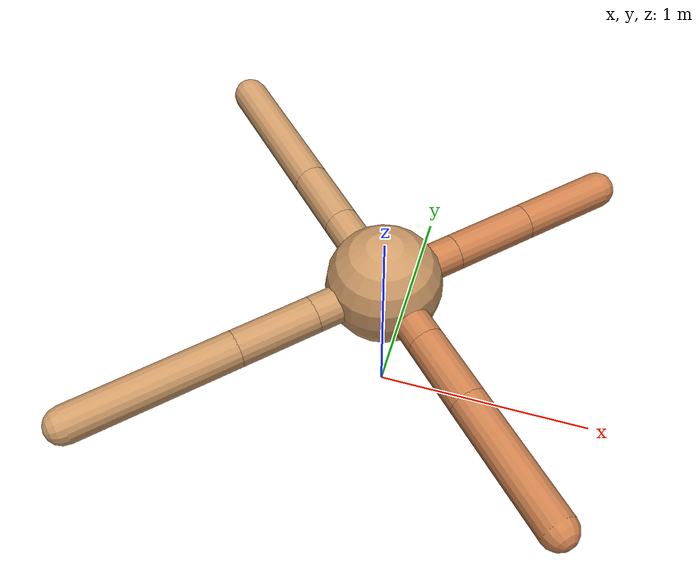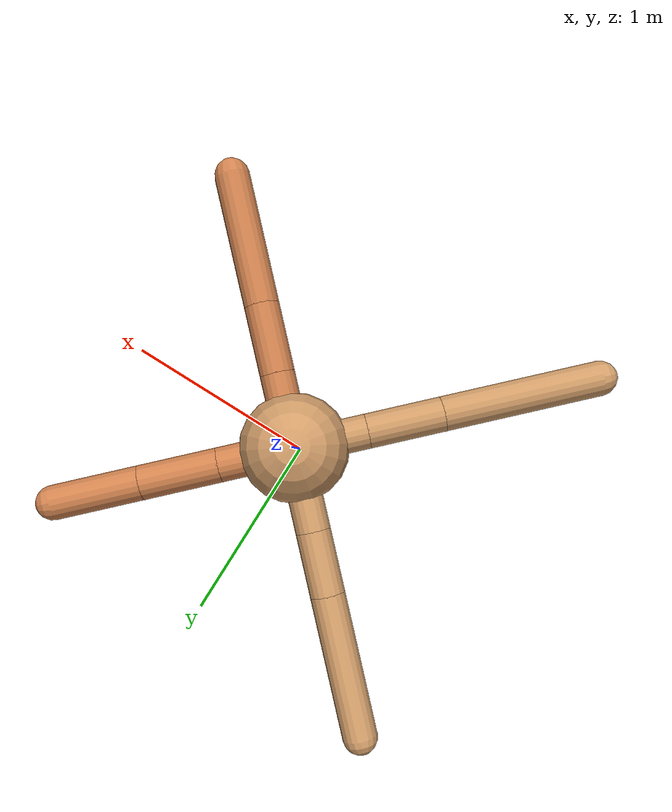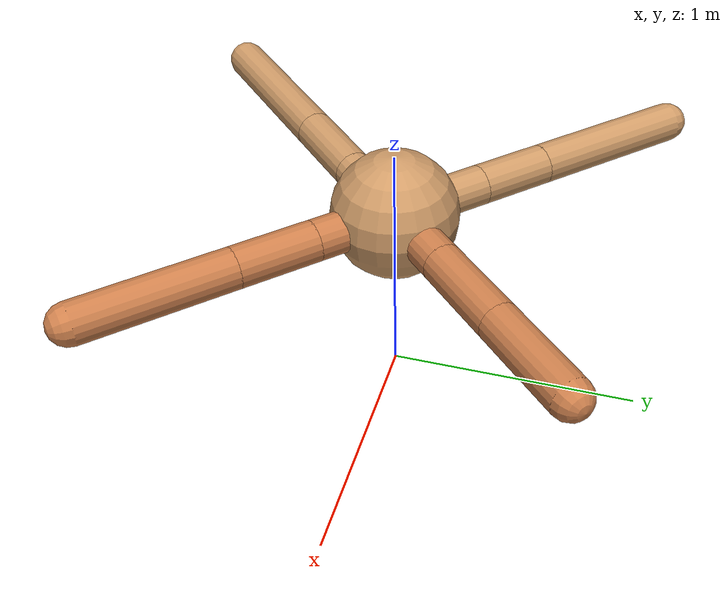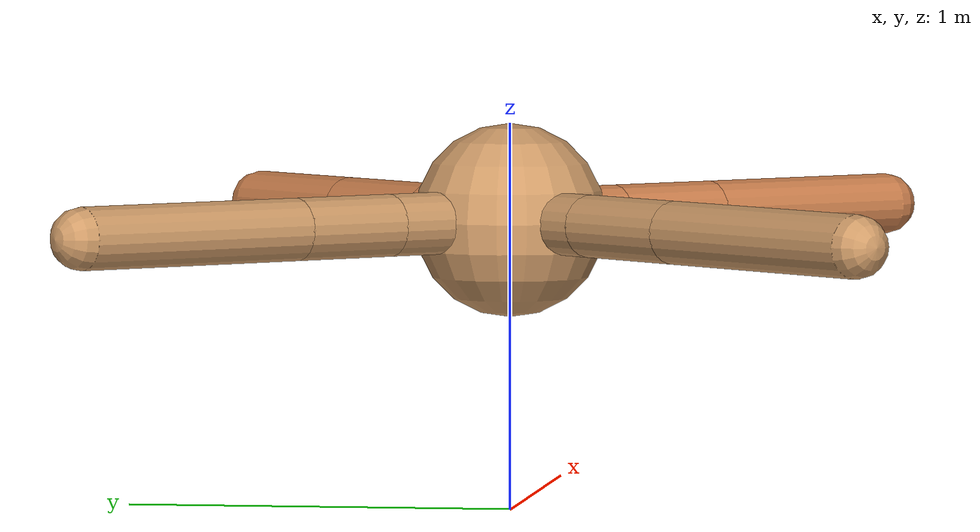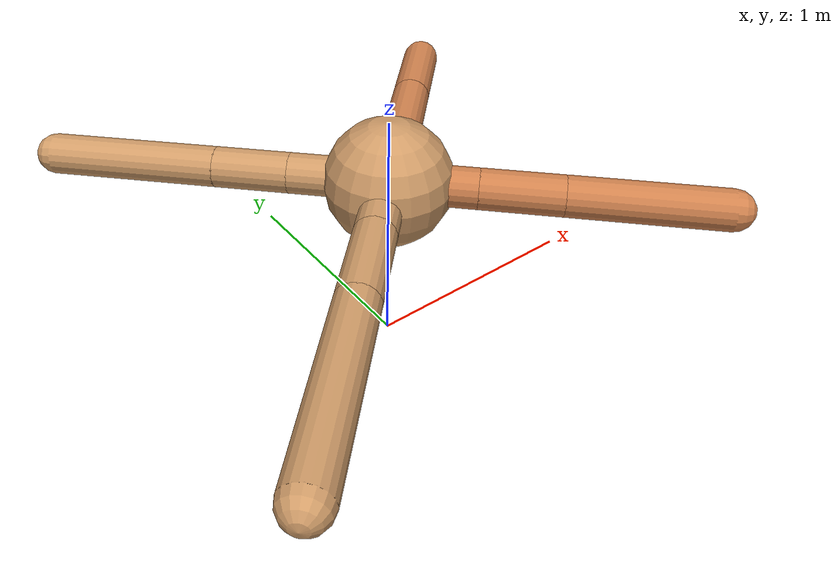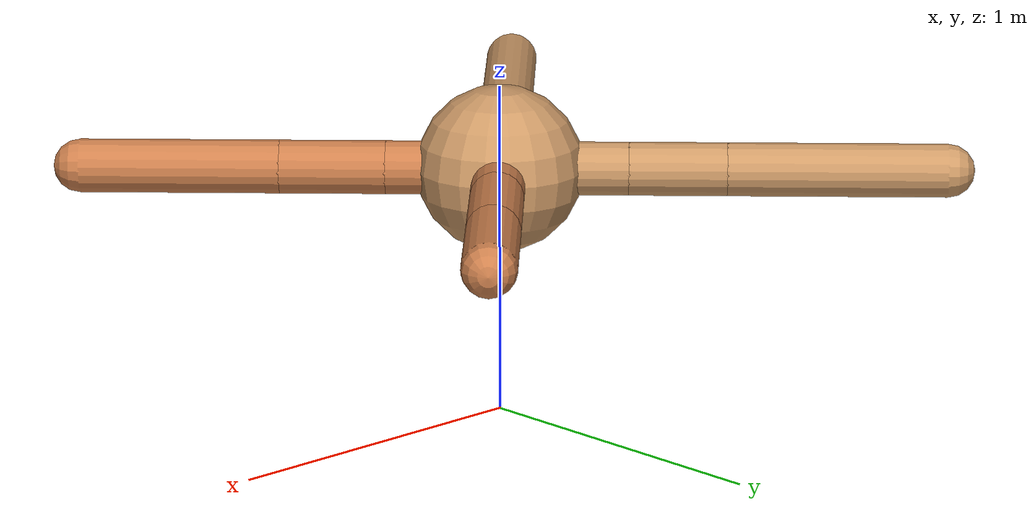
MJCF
<mujoco model="ant">
  <compiler angle="degree" coordinate="local" inertiafromgeom="true" />
  <option integrator="RK4" timestep="0.01" />
  <custom>
    <numeric data="0.0 0.0 0.55 1.0 0.0 0.0 0.0 0.0 1.0 0.0 -1.0 0.0 -1.0 0.0 1.0" name="init_qpos" />
  </custom>
  <default>
    <joint armature="1" damping="1" limited="true" />
    <geom conaffinity="0" condim="3" density="5.0" friction="1.5 0.1 0.1" margin="0.01" rgba="0.8 0.6 0.4 1" />
  </default>
  <worldbody>
    <body name="torso" pos="0 0 0.75">
      <geom name="torso_geom" pos="0 0 0" size="0.25" type="sphere" />

      <body name="front_left_leg" pos="0 0 0">
        <geom fromto="0.0 0.0 0.0 0.24395643084632335 0.24395643084632335 0.0" name="aux_1_geom" size="0.08" type="capsule" rgba=".8 .5 .3 1" />
        <body name="aux_1" pos="0.24395643084632335 0.24395643084632335 0.0">
          <joint axis="0 0 1" name="hip_1" pos="0.0 0.0 0.0" range="-40 40" type="hinge" />
          <geom fromto="0.0 0.0 0.0 0.2546775457697244 0.2546775457697244 0.0" name="left_leg_geom" size="0.08" type="capsule" rgba=".8 .5 .3 1" />
          <body pos="0.2546775457697244 0.2546775457697244 0.0" name="front_left_foot">
            <joint axis="-1 1 0" name="ankle_1" pos="0.0 0.0 0.0" range="30 100" type="hinge" />
            <geom fromto="0.0 0.0 0.0 0.2840832724447343 0.2840832724447343 0.0" name="left_ankle_geom" size="0.08" type="capsule" rgba=".8 .5 .3 1" />
          </body>
        </body>
      </body>
      <body name="front_right_leg" pos="0 0 0">
        <geom fromto="0.0 0.0 0.0 -0.27092562007468385 0.27092562007468385 0.0" name="aux_2_geom" size="0.08" type="capsule" />
        <body name="aux_2" pos="-0.27092562007468385 0.27092562007468385 0.0">
          <joint axis="0 0 1" name="hip_2" pos="0.0 0.0 0.0" range="-40 40" type="hinge" />
          <geom fromto="0.0 0.0 0.0 -0.2069982687466262 0.2069982687466262 0.0" name="right_leg_geom" size="0.08" type="capsule" />
          <body pos="-0.2069982687466262 0.2069982687466262 0.0" name="front_right_foot">
            <joint axis="1 1 0" name="ankle_2" pos="0.0 0.0 0.0" range="-100 -30" type="hinge" />
            <geom fromto="0.0 0.0 0.0 -0.46413941916227064 0.46413941916227064 0.0" name="right_ankle_geom" size="0.08" type="capsule" />
          </body>
        </body>
      </body>
      <body name="left_back_leg" pos="0 0 0">
        <geom fromto="0.0 0.0 0.0 -0.23809223645070443 -0.23809223645070443 0.0" name="aux_3_geom" size="0.08" type="capsule" />
        <body name="aux_3" pos="-0.23809223645070443 -0.23809223645070443 0.0">
          <joint axis="0 0 1" name="hip_3" pos="0.0 0.0 0.0" range="-40 40" type="hinge" />
          <geom fromto="0.0 0.0 0.0 -0.24528841054932357 -0.24528841054932357 0.0" name="back_leg_geom" size="0.08" type="capsule" />
          <body pos="-0.24528841054932357 -0.24528841054932357 0.0" name="left_back_foot">
            <joint axis="-1 1 0" name="ankle_3" pos="0.0 0.0 0.0" range="-100 -30" type="hinge" />
            <geom fromto="0.0 0.0 0.0 -0.5092604193705075 -0.5092604193705075 0.0" name="third_ankle_geom" size="0.08" type="capsule" />
          </body>
        </body>
      </body>
      <body name="right_back_leg" pos="0 0 0">
        <geom fromto="0.0 0.0 0.0 0.24085463542650537 -0.24085463542650537 0.0" name="aux_4_geom" size="0.08" type="capsule" rgba=".8 .5 .3 1" />
        <body name="aux_4" pos="0.24085463542650537 -0.24085463542650537 0.0">
          <joint axis="0 0 1" name="hip_4" pos="0.0 0.0 0.0" range="-40 40" type="hinge" />
          <geom fromto="0.0 0.0 0.0 0.2233479813561303 -0.2233479813561303 0.0" name="rightback_leg_geom" size="0.08" type="capsule" rgba=".8 .5 .3 1" />
          <body pos="0.2233479813561303 -0.2233479813561303 0.0" name="right_back_foot">
            <joint axis="1 1 0" name="ankle_4" pos="0.0 0.0 0.0" range="30 100" type="hinge" />
            <geom fromto="0.0 0.0 0.0 0.42121492907153635 -0.42121492907153635 0.0" name="fourth_ankle_geom" size="0.08" type="capsule" rgba=".8 .5 .3 1" />
          </body>
        </body>
      </body>
    </body>
  </worldbody>
  <actuator>
    <motor ctrllimited="true" ctrlrange="-1.0 1.0" joint="hip_4" gear="150" />
    <motor ctrllimited="true" ctrlrange="-1.0 1.0" joint="ankle_4" gear="150" />
    <motor ctrllimited="true" ctrlrange="-1.0 1.0" joint="hip_1" gear="150" />
    <motor ctrllimited="true" ctrlrange="-1.0 1.0" joint="ankle_1" gear="150" />
    <motor ctrllimited="true" ctrlrange="-1.0 1.0" joint="hip_2" gear="150" />
    <motor ctrllimited="true" ctrlrange="-1.0 1.0" joint="ankle_2" gear="150" />
    <motor ctrllimited="true" ctrlrange="-1.0 1.0" joint="hip_3" gear="150" />
    <motor ctrllimited="true" ctrlrange="-1.0 1.0" joint="ankle_3" gear="150" />
  </actuator>
</mujoco>
